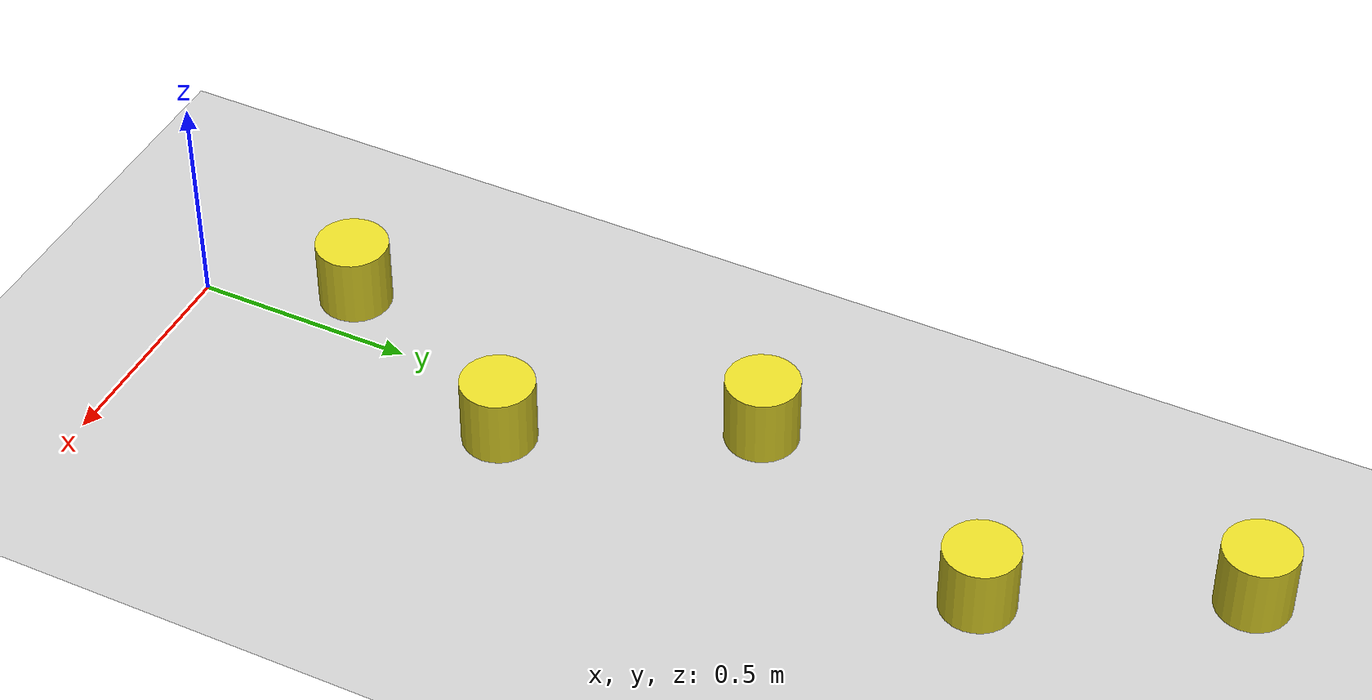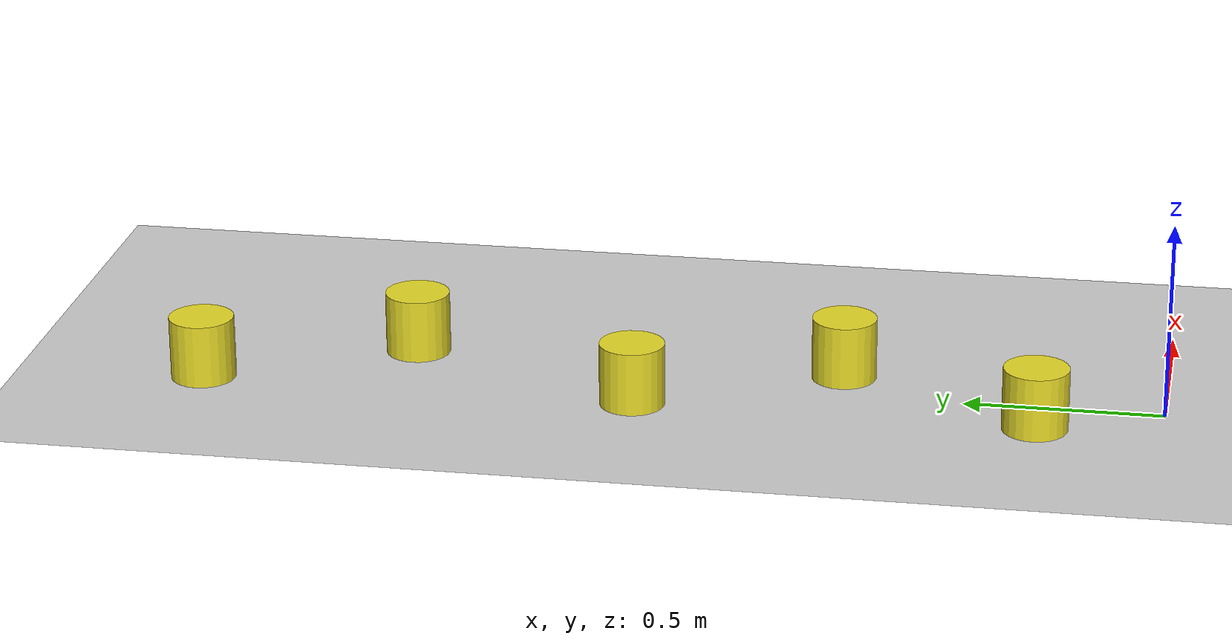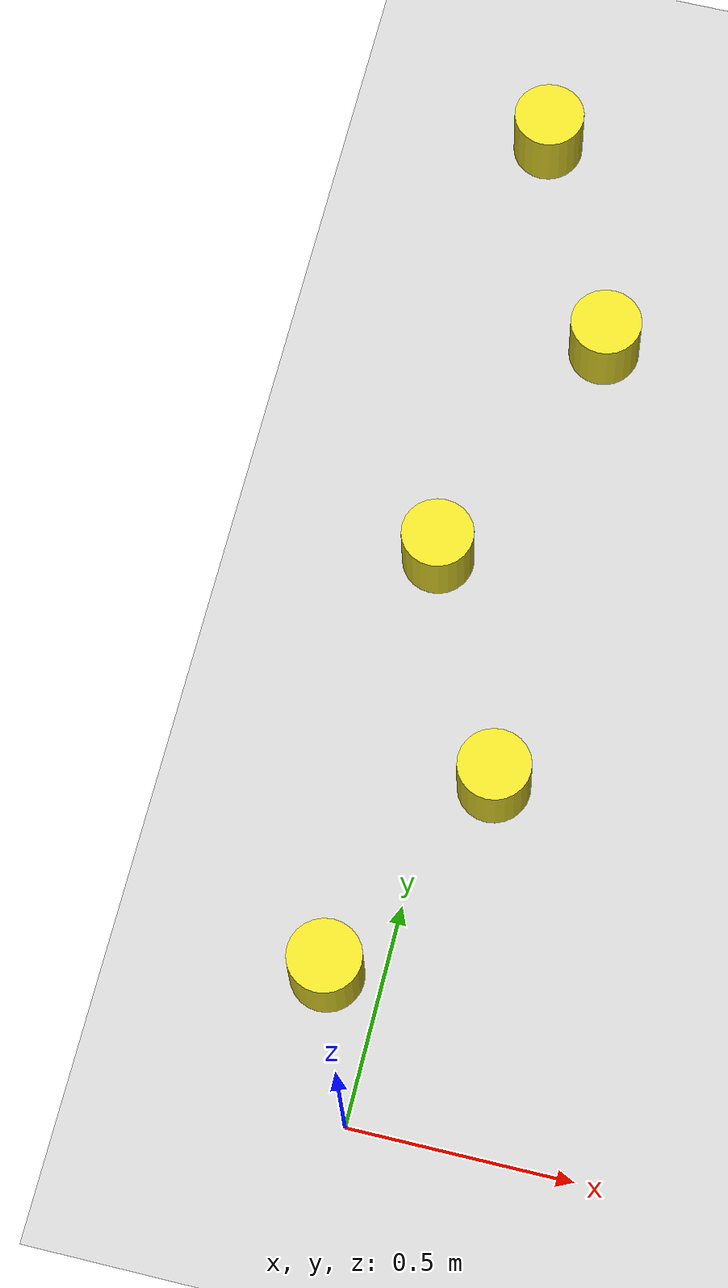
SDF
<sdf version='1.7'>
  <world name='default'>
    <light name='sun' type='directional'>
      <cast_shadows>1</cast_shadows>
      <pose>0 0 10 0 -0 0</pose>
      <diffuse>0.8 0.8 0.8 1</diffuse>
      <specular>0.2 0.2 0.2 1</specular>
      <attenuation>
        <range>1000</range>
        <constant>0.9</constant>
        <linear>0.01</linear>
        <quadratic>0.001</quadratic>
      </attenuation>
      <direction>-0.5 0.1 -0.9</direction>
      <spot>
        <inner_angle>0</inner_angle>
        <outer_angle>0</outer_angle>
        <falloff>0</falloff>
      </spot>
    </light>
    <model name='ground_plane'>
      <static>1</static>
      <link name='link'>
        <collision name='collision'>
          <geometry>
            <plane>
              <normal>0 0 1</normal>
              <size>100 100</size>
            </plane>
          </geometry>
          <surface>
            <contact>
              <collide_bitmask>65535</collide_bitmask>
              <ode/>
            </contact>
            <friction>
              <ode>
                <mu>0</mu>
                <mu2>0</mu2>
              </ode>
              <torsional>
                <ode/>
              </torsional>
            </friction>
            <bounce/>
          </surface>
          <max_contacts>10</max_contacts>
        </collision>
        <visual name='visual'>
          <cast_shadows>0</cast_shadows>
          <geometry>
            <plane>
              <normal>0 0 1</normal>
              <size>100 100</size>
            </plane>
          </geometry>
          <material>
            <script>
              <uri>file://media/materials/scripts/gazebo.material</uri>
              <name>Gazebo/Grey</name>
            </script>
          </material>
        </visual>
        <self_collide>0</self_collide>
        <enable_wind>0</enable_wind>
        <kinematic>0</kinematic>
      </link>
    </model>
    <gravity>0 0 -9.8</gravity>
    <magnetic_field>6e-06 2.3e-05 -4.2e-05</magnetic_field>
    <atmosphere type='adiabatic'/>
    <physics type='ode'>
      <max_step_size>0.001</max_step_size>
      <real_time_factor>1</real_time_factor>
      <real_time_update_rate>1000</real_time_update_rate>
    </physics>
    <scene>
      <ambient>0.4 0.4 0.4 1</ambient>
      <background>0.7 0.7 0.7 1</background>
      <shadows>1</shadows>
    </scene>
    <audio>
      <device>default</device>
    </audio>
    <wind/>
    <spherical_coordinates>
      <surface_model>EARTH_WGS84</surface_model>
      <latitude_deg>0</latitude_deg>
      <longitude_deg>0</longitude_deg>
      <elevation>0</elevation>
      <heading_deg>0</heading_deg>
    </spherical_coordinates>

    <gui fullscreen='0'>
      <camera name='user_camera'>
        <pose>-0.031549 1.089143 2.702137 -0.000011 1.561796 3.130290</pose>
        <view_controller>orbit</view_controller>
        <projection_type>perspective</projection_type>
      </camera>
    </gui>

    <model name='3obstacles'>
      <static>1</static>
      <static>1</static>
      <allow_auto_disable>1</allow_auto_disable>
      <pose>0.379904 0.313177 0.077132 0 -0 0</pose>

      <link name='obstacle_1'>
        <inertial>
          <mass>0.00442567</mass>
          <inertia>
            <ixx>1.73831e-05</ixx>
            <ixy>0</ixy>
            <ixz>0</ixz>
            <iyy>1.73831e-05</iyy>
            <iyz>0</iyz>
            <izz>1.4913e-05</izz>
          </inertia>
          <pose>0 0 0 0 -0 0</pose>
        </inertial>
        <pose>-0.5 0.0 0 0 0 0</pose>
        <gravity>1</gravity>
        <self_collide>0</self_collide>
        <kinematic>0</kinematic>
        <enable_wind>0</enable_wind>
        <visual name='visual'>
          <pose>0 0 0 0 -0 0</pose>
          <geometry>
            <cylinder>
              <radius>0.0820934</radius>
              <length>0.16406</length>
            </cylinder>
          </geometry>
          <material>
            <lighting>1</lighting>
            <script>
              <uri>file://media/materials/scripts/gazebo.material</uri>
              <name>Gazebo/Yellow</name>
            </script>
            <shader type='pixel'>
              <normal_map>__default__</normal_map>
            </shader>
            <ambient>1 0 0 1</ambient>
            <diffuse>1 0 0 1</diffuse>
            <specular>0.1 0.1 0.1 1</specular>
            <emissive>0 0 0 1</emissive>
          </material>
          <transparency>0</transparency>
          <cast_shadows>1</cast_shadows>
        </visual>
        <collision name='collision'>
          <laser_retro>0</laser_retro>
          <max_contacts>10</max_contacts>
          <pose>0 0 0 0 -0 0</pose>
          <geometry>
            <cylinder>
              <radius>0.082093</radius>
              <length>0.16406</length>
            </cylinder>
          </geometry>
          <surface>
            <friction>
              <ode>
                <mu>0</mu>
                <mu2>0</mu2>
                <fdir1>0 0 0</fdir1>
                <slip1>0</slip1>
                <slip2>0</slip2>
              </ode>
              <torsional>
                <coefficient>1</coefficient>
                <patch_radius>0</patch_radius>
                <surface_radius>0</surface_radius>
                <use_patch_radius>1</use_patch_radius>
                <ode>
                  <slip>0</slip>
                </ode>
              </torsional>
            </friction>
            <bounce>
              <restitution_coefficient>0</restitution_coefficient>
              <threshold>1e+06</threshold>
            </bounce>
            <contact>
              <collide_without_contact>0</collide_without_contact>
              <collide_without_contact_bitmask>1</collide_without_contact_bitmask>
              <collide_bitmask>1</collide_bitmask>
              <ode>
                <soft_cfm>0</soft_cfm>
                <soft_erp>0.2</soft_erp>
                <kp>1e+13</kp>
                <kd>1</kd>
                <max_vel>0.01</max_vel>
                <min_depth>0</min_depth>
              </ode>
              <bullet>
                <split_impulse>1</split_impulse>
                <split_impulse_penetration_threshold>-0.01</split_impulse_penetration_threshold>
                <soft_cfm>0</soft_cfm>
                <soft_erp>0.2</soft_erp>
                <kp>1e+13</kp>
                <kd>1</kd>
              </bullet>
            </contact>
          </surface>
        </collision>
      </link>

      <link name='obstacle_2'>
        <inertial>
          <mass>0.00442567</mass>
          <inertia>
            <ixx>1.73831e-05</ixx>
            <ixy>0</ixy>
            <ixz>0</ixz>
            <iyy>1.73831e-05</iyy>
            <iyz>0</iyz>
            <izz>1.4913e-05</izz>
          </inertia>
          <pose>0 0 0 0 -0 0</pose>
        </inertial>
        <pose>-0.25 0.5 0 0 0 0</pose>
        <gravity>1</gravity>
        <self_collide>0</self_collide>
        <kinematic>0</kinematic>
        <enable_wind>0</enable_wind>
        <visual name='visual'>
          <pose>0 0 0 0 -0 0</pose>
          <geometry>
            <cylinder>
              <radius>0.0820934</radius>
              <length>0.16406</length>
            </cylinder>
          </geometry>
          <material>
            <lighting>1</lighting>
            <script>
              <uri>file://media/materials/scripts/gazebo.material</uri>
              <name>Gazebo/Yellow</name>
            </script>
            <shader type='pixel'>
              <normal_map>__default__</normal_map>
            </shader>
            <ambient>1 0 0 1</ambient>
            <diffuse>1 0 0 1</diffuse>
            <specular>0.1 0.1 0.1 1</specular>
            <emissive>0 0 0 1</emissive>
          </material>
          <transparency>0</transparency>
          <cast_shadows>1</cast_shadows>
        </visual>
        <collision name='collision'>
          <laser_retro>0</laser_retro>
          <max_contacts>10</max_contacts>
          <pose>0 0 0 0 -0 0</pose>
          <geometry>
            <cylinder>
              <radius>0.082093</radius>
              <length>0.16406</length>
            </cylinder>
          </geometry>
          <surface>
            <friction>
              <ode>
                <mu>0</mu>
                <mu2>0</mu2>
                <fdir1>0 0 0</fdir1>
                <slip1>0</slip1>
                <slip2>0</slip2>
              </ode>
              <torsional>
                <coefficient>1</coefficient>
                <patch_radius>0</patch_radius>
                <surface_radius>0</surface_radius>
                <use_patch_radius>1</use_patch_radius>
                <ode>
                  <slip>0</slip>
                </ode>
              </torsional>
            </friction>
            <bounce>
              <restitution_coefficient>0</restitution_coefficient>
              <threshold>1e+06</threshold>
            </bounce>
            <contact>
              <collide_without_contact>0</collide_without_contact>
              <collide_without_contact_bitmask>1</collide_without_contact_bitmask>
              <collide_bitmask>1</collide_bitmask>
              <ode>
                <soft_cfm>0</soft_cfm>
                <soft_erp>0.2</soft_erp>
                <kp>1e+13</kp>
                <kd>1</kd>
                <max_vel>0.01</max_vel>
                <min_depth>0</min_depth>
              </ode>
              <bullet>
                <split_impulse>1</split_impulse>
                <split_impulse_penetration_threshold>-0.01</split_impulse_penetration_threshold>
                <soft_cfm>0</soft_cfm>
                <soft_erp>0.2</soft_erp>
                <kp>1e+13</kp>
                <kd>1</kd>
              </bullet>
            </contact>
          </surface>
        </collision>
      </link>

      <link name='obstacle_3'>
        <inertial>
          <mass>0.00442567</mass>
          <inertia>
            <ixx>1.73831e-05</ixx>
            <ixy>0</ixy>
            <ixz>0</ixz>
            <iyy>1.73831e-05</iyy>
            <iyz>0</iyz>
            <izz>1.4913e-05</izz>
          </inertia>
          <pose>0 0 0 0 -0 0</pose>
        </inertial>
        <pose>-0.5 1.0 0 0 0 0</pose>
        <gravity>1</gravity>
        <self_collide>0</self_collide>
        <kinematic>0</kinematic>
        <enable_wind>0</enable_wind>
        <visual name='visual'>
          <pose>0 0 0 0 -0 0</pose>
          <geometry>
            <cylinder>
              <radius>0.0820934</radius>
              <length>0.16406</length>
            </cylinder>
          </geometry>
          <material>
            <lighting>1</lighting>
            <script>
              <uri>file://media/materials/scripts/gazebo.material</uri>
              <name>Gazebo/Yellow</name>
            </script>
            <shader type='pixel'>
              <normal_map>__default__</normal_map>
            </shader>
            <ambient>1 0 0 1</ambient>
            <diffuse>1 0 0 1</diffuse>
            <specular>0.1 0.1 0.1 1</specular>
            <emissive>0 0 0 1</emissive>
          </material>
          <transparency>0</transparency>
          <cast_shadows>1</cast_shadows>
        </visual>
        <collision name='collision'>
          <laser_retro>0</laser_retro>
          <max_contacts>10</max_contacts>
          <pose>0 0 0 0 -0 0</pose>
          <geometry>
            <cylinder>
              <radius>0.082093</radius>
              <length>0.16406</length>
            </cylinder>
          </geometry>
          <surface>
            <friction>
              <ode>
                <mu>0</mu>
                <mu2>0</mu2>
                <fdir1>0 0 0</fdir1>
                <slip1>0</slip1>
                <slip2>0</slip2>
              </ode>
              <torsional>
                <coefficient>1</coefficient>
                <patch_radius>0</patch_radius>
                <surface_radius>0</surface_radius>
                <use_patch_radius>1</use_patch_radius>
                <ode>
                  <slip>0</slip>
                </ode>
              </torsional>
            </friction>
            <bounce>
              <restitution_coefficient>0</restitution_coefficient>
              <threshold>1e+06</threshold>
            </bounce>
            <contact>
              <collide_without_contact>0</collide_without_contact>
              <collide_without_contact_bitmask>1</collide_without_contact_bitmask>
              <collide_bitmask>1</collide_bitmask>
              <ode>
                <soft_cfm>0</soft_cfm>
                <soft_erp>0.2</soft_erp>
                <kp>1e+13</kp>
                <kd>1</kd>
                <max_vel>0.01</max_vel>
                <min_depth>0</min_depth>
              </ode>
              <bullet>
                <split_impulse>1</split_impulse>
                <split_impulse_penetration_threshold>-0.01</split_impulse_penetration_threshold>
                <soft_cfm>0</soft_cfm>
                <soft_erp>0.2</soft_erp>
                <kp>1e+13</kp>
                <kd>1</kd>
              </bullet>
            </contact>
          </surface>
        </collision>
      </link>

      <link name='obstacle_4'>
        <inertial>
          <mass>0.00442567</mass>
          <inertia>
            <ixx>1.73831e-05</ixx>
            <ixy>0</ixy>
            <ixz>0</ixz>
            <iyy>1.73831e-05</iyy>
            <iyz>0</iyz>
            <izz>1.4913e-05</izz>
          </inertia>
          <pose>0 0 0 0 -0 0</pose>
        </inertial>
        <pose>-0.25 1.6 0 0 0 0</pose>
        <gravity>1</gravity>
        <self_collide>0</self_collide>
        <kinematic>0</kinematic>
        <enable_wind>0</enable_wind>
        <visual name='visual'>
          <pose>0 0 0 0 -0 0</pose>
          <geometry>
            <cylinder>
              <radius>0.0820934</radius>
              <length>0.16406</length>
            </cylinder>
          </geometry>
          <material>
            <lighting>1</lighting>
            <script>
              <uri>file://media/materials/scripts/gazebo.material</uri>
              <name>Gazebo/Yellow</name>
            </script>
            <shader type='pixel'>
              <normal_map>__default__</normal_map>
            </shader>
            <ambient>1 0 0 1</ambient>
            <diffuse>1 0 0 1</diffuse>
            <specular>0.1 0.1 0.1 1</specular>
            <emissive>0 0 0 1</emissive>
          </material>
          <transparency>0</transparency>
          <cast_shadows>1</cast_shadows>
        </visual>
        <collision name='collision'>
          <laser_retro>0</laser_retro>
          <max_contacts>10</max_contacts>
          <pose>0 0 0 0 -0 0</pose>
          <geometry>
            <cylinder>
              <radius>0.082093</radius>
              <length>0.16406</length>
            </cylinder>
          </geometry>
          <surface>
            <friction>
              <ode>
                <mu>0</mu>
                <mu2>0</mu2>
                <fdir1>0 0 0</fdir1>
                <slip1>0</slip1>
                <slip2>0</slip2>
              </ode>
              <torsional>
                <coefficient>1</coefficient>
                <patch_radius>0</patch_radius>
                <surface_radius>0</surface_radius>
                <use_patch_radius>1</use_patch_radius>
                <ode>
                  <slip>0</slip>
                </ode>
              </torsional>
            </friction>
            <bounce>
              <restitution_coefficient>0</restitution_coefficient>
              <threshold>1e+06</threshold>
            </bounce>
            <contact>
              <collide_without_contact>0</collide_without_contact>
              <collide_without_contact_bitmask>1</collide_without_contact_bitmask>
              <collide_bitmask>1</collide_bitmask>
              <ode>
                <soft_cfm>0</soft_cfm>
                <soft_erp>0.2</soft_erp>
                <kp>1e+13</kp>
                <kd>1</kd>
                <max_vel>0.01</max_vel>
                <min_depth>0</min_depth>
              </ode>
              <bullet>
                <split_impulse>1</split_impulse>
                <split_impulse_penetration_threshold>-0.01</split_impulse_penetration_threshold>
                <soft_cfm>0</soft_cfm>
                <soft_erp>0.2</soft_erp>
                <kp>1e+13</kp>
                <kd>1</kd>
              </bullet>
            </contact>
          </surface>
        </collision>
      </link>

      <link name='obstacle_5'>
        <inertial>
          <mass>0.00442567</mass>
          <inertia>
            <ixx>1.73831e-05</ixx>
            <ixy>0</ixy>
            <ixz>0</ixz>
            <iyy>1.73831e-05</iyy>
            <iyz>0</iyz>
            <izz>1.4913e-05</izz>
          </inertia>
          <pose>0 0 0 0 -0 0</pose>
        </inertial>
        <pose>-0.5 2.1 0 0 0 0</pose>
        <gravity>1</gravity>
        <self_collide>0</self_collide>
        <kinematic>0</kinematic>
        <enable_wind>0</enable_wind>
        <visual name='visual'>
          <pose>0 0 0 0 -0 0</pose>
          <geometry>
            <cylinder>
              <radius>0.0820934</radius>
              <length>0.16406</length>
            </cylinder>
          </geometry>
          <material>
            <lighting>1</lighting>
            <script>
              <uri>file://media/materials/scripts/gazebo.material</uri>
              <name>Gazebo/Yellow</name>
            </script>
            <shader type='pixel'>
              <normal_map>__default__</normal_map>
            </shader>
            <ambient>1 0 0 1</ambient>
            <diffuse>1 0 0 1</diffuse>
            <specular>0.1 0.1 0.1 1</specular>
            <emissive>0 0 0 1</emissive>
          </material>
          <transparency>0</transparency>
          <cast_shadows>1</cast_shadows>
        </visual>
        <collision name='collision'>
          <laser_retro>0</laser_retro>
          <max_contacts>10</max_contacts>
          <pose>0 0 0 0 -0 0</pose>
          <geometry>
            <cylinder>
              <radius>0.082093</radius>
              <length>0.16406</length>
            </cylinder>
          </geometry>
          <surface>
            <friction>
              <ode>
                <mu>0</mu>
                <mu2>0</mu2>
                <fdir1>0 0 0</fdir1>
                <slip1>0</slip1>
                <slip2>0</slip2>
              </ode>
              <torsional>
                <coefficient>1</coefficient>
                <patch_radius>0</patch_radius>
                <surface_radius>0</surface_radius>
                <use_patch_radius>1</use_patch_radius>
                <ode>
                  <slip>0</slip>
                </ode>
              </torsional>
            </friction>
            <bounce>
              <restitution_coefficient>0</restitution_coefficient>
              <threshold>1e+06</threshold>
            </bounce>
            <contact>
              <collide_without_contact>0</collide_without_contact>
              <collide_without_contact_bitmask>1</collide_without_contact_bitmask>
              <collide_bitmask>1</collide_bitmask>
              <ode>
                <soft_cfm>0</soft_cfm>
                <soft_erp>0.2</soft_erp>
                <kp>1e+13</kp>
                <kd>1</kd>
                <max_vel>0.01</max_vel>
                <min_depth>0</min_depth>
              </ode>
              <bullet>
                <split_impulse>1</split_impulse>
                <split_impulse_penetration_threshold>-0.01</split_impulse_penetration_threshold>
                <soft_cfm>0</soft_cfm>
                <soft_erp>0.2</soft_erp>
                <kp>1e+13</kp>
                <kd>1</kd>
              </bullet>
            </contact>
          </surface>
        </collision>
      </link>

    </model>

  </world>
</sdf>
